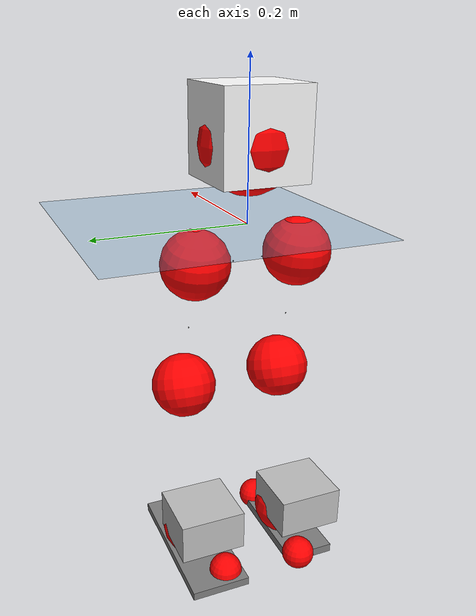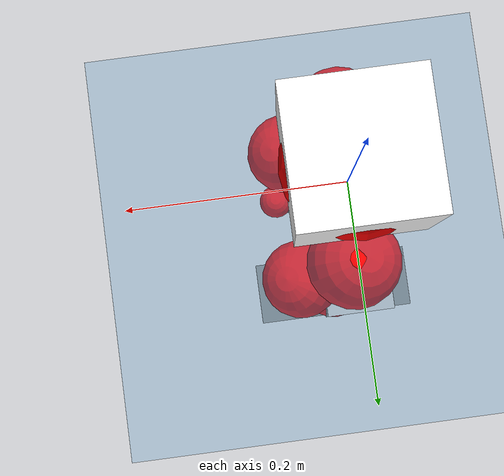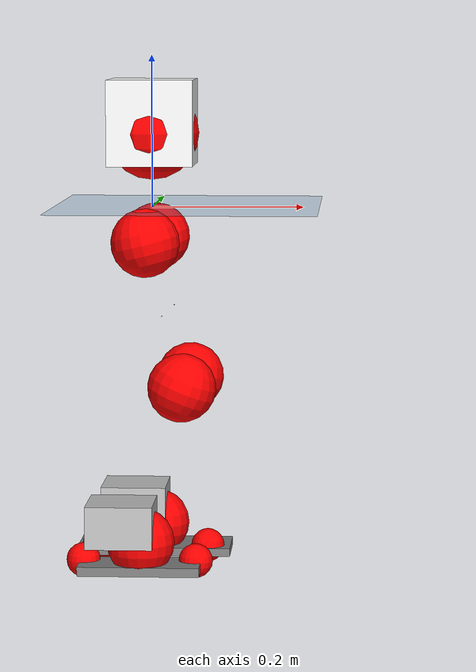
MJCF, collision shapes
<mujoco model="pi_12dof_release_v1">
  <compiler angle="radian" assetdir="assets" balanceinertia="true" inertiafromgeom="false"/>

  <option timestep="0.005" density="1.2" viscosity="2e-05"/>

  <size nkey="1"/>

  <visual>
    <quality shadowsize="8192"/>
    <map shadowclip="0.5"/>
  </visual>

  <default>
    <default class="/">
      <joint armature="0.01" damping="0.01" frictionloss="0.01"/>
      <geom contype="0" conaffinity="0" group="1" solref="-1000 -80"/>
      <site size="0.01 0.005 0.005" group="5"/>
      <general forcelimited="true" biastype="affine" gainprm="20" biasprm="0 -20 -0.5"/>
      <default class="foot">
        <geom size="0.0845 0.036 0.005" type="box" condim="6" group="4" priority="1" friction="0.9 0.2 0.2" solimp="0.015 1 0.005"/>
      </default>
      <default class="reward_collision_sphere">
        <geom group="5" rgba="1 0 0 1"/>
      </default>
    </default>
  </default>

  <asset>
    <texture type="skybox" colorspace="auto" name="//unnamed_texture_0" builtin="gradient" rgb1="0.95 0.95 0.95" rgb2="0.95 0.95 0.95" width="100" height="600"/>
    <texture type="2d" colorspace="auto" name="texplane" builtin="checker" rgb1="0.345 0.575 0.748" rgb2="0.345 0.575 0.748" markrgb="1 1 1" width="512" height="512"/>
    <material name="MatPlane" class="/" texture="texplane" texuniform="true" texrepeat="2 2" specular="0.9"/>
    <mesh name="baselink_1" class="/" file="baselink_1.STL"/>
    <mesh name="r_hip_pitch_link" class="/" file="r_hip_pitch_link.STL"/>
    <mesh name="r_hip_roll_link" class="/" file="r_hip_roll_link.STL"/>
    <mesh name="r_thigh_link" class="/" file="r_thigh_link.STL"/>
    <mesh name="r_calf_link" class="/" file="r_calf_link.STL"/>
    <mesh name="r_ankle_pitch_link" class="/" file="r_ankle_pitch_link.STL"/>
    <mesh name="r_ankle_roll_link" class="/" file="r_ankle_roll_link.STL"/>
    <mesh name="l_hip_pitch_link" class="/" file="l_hip_pitch_link.STL"/>
    <mesh name="l_hip_roll_link" class="/" file="l_hip_roll_link.STL"/>
    <mesh name="l_thigh_link" class="/" file="l_thigh_link.STL"/>
    <mesh name="l_calf_link" class="/" file="l_calf_link.STL"/>
    <mesh name="l_ankle_pitch_link" class="/" file="l_ankle_pitch_link.STL"/>
    <mesh name="l_ankle_roll_link" class="/" file="l_ankle_roll_link.STL"/>
  </asset>

  <worldbody>
    <geom name="floor" class="/" size="100 100 0.125" type="plane" group="0" material="MatPlane"/>
    <light name="toplight_shadow" class="/" pos="0 0 5" dir="0.0990148 0.0990148 -0.990148" type="directional" ambient="0.04 0.04 0.04" diffuse="0.55 0.55 0.55" specular="0.12 0.12 0.12"/>
    <light name="toplight_fill" class="/" pos="0 0 5" dir="0.0990148 0.0990148 -0.990148" type="directional" castshadow="false" ambient="0.04 0.04 0.04" diffuse="0.3 0.3 0.3" specular="0.08 0.08 0.08"/>
    <body name="trunk" pos="0.000331895 -0.000239554 -4.66916e-05" quat="1 -6.4602e-05 7.98924e-06 -8.92534e-05">
      <inertial pos="0.00347389 -0.0029584 0.0556901" quat="0.69611 0.00918685 0.00930568 0.717817" mass="3.08399" diaginertia="0.0153047 0.00430747 0.0220903"/>
      <joint name="//unnamed_joint_0" type="free"/>
      <geom name="//unnamed_geom_1" class="/" type="mesh" density="0" rgba="1 1 1 1" mesh="baselink_1"/>
      <geom name="//unnamed_geom_2" class="/" size="0.056199 0.056199 0.056199" pos="0 0 0.112241" type="box" rgba="1 1 1 1"/>
      <geom name="//unnamed_geom_3" class="reward_collision_sphere" size="0.0618189" pos="0 0 0.0982105"/>
      <site name="imu" class="/" pos="0.0124703 -0.00708272 0.0119948" size="0.0112398"/>
      <camera name="track" class="/" pos="0 -1.72948 0" quat="0.707107 0.707107 0 0" mode="trackcom"/>
      <camera name="ego_camera" class="/" pos="0.0828141 0 0.252541" quat="-0.5 -0.5 0.5 0.5"/>
      <body name="r_hip_pitch_link" pos="-0.00254571 -0.0205453 -0.0435901" quat="0.992206 -0.000381029 -0.124597 0.00133784">
        <inertial pos="0.00262748 -0.0500244 -0.00204179" quat="-0.0222234 0.706273 -0.0192751 0.707328" mass="0.492044" diaginertia="0.000172256 4.49959e-05 0.00044387"/>
        <joint name="r_hip_pitch_joint" class="/" pos="0 0 0" axis="0.0119673 -0.999845 -0.0129093" range="-1.78605 1.24174" armature="0.0105138" damping="0.00769475" frictionloss="0.0114585"/>
        <geom name="//unnamed_geom_4" class="/" type="mesh" density="0" rgba="0.75294 0.75294 0.75294 1" mesh="r_hip_pitch_link"/>
        <geom name="//unnamed_geom_5" class="/" size="0.00056199 0.00056199 0.00056199" type="box" rgba="0.75294 0.75294 0.75294 1"/>
        <body name="r_hip_roll_link" pos="-0.00104999 -0.0493658 0.00208885" quat="1 1.07784e-05 1.04318e-05 2.11776e-06">
          <inertial pos="-0.00171481 -0.000155879 -0.0866509" quat="0.705696 -0.078992 -0.0824958 0.699248" mass="0.584156" diaginertia="0.000542785 0.000136785 0.000749957"/>
          <joint name="r_hip_roll_joint" class="/" pos="0 0 0" axis="-0.999993 -0.00271088 0.00250822" range="-0.126651 0.474894" armature="0.0100654" damping="0.0414475" frictionloss="0.0119582"/>
          <geom name="//unnamed_geom_6" class="/" type="mesh" density="0" rgba="0.75294 0.75294 0.75294 1" mesh="r_hip_roll_link"/>
          <geom name="//unnamed_geom_7" class="/" size="0.00056199 0.00056199 0.00056199" type="box" rgba="0.75294 0.75294 0.75294 1"/>
          <geom name="//unnamed_geom_8" class="reward_collision_sphere" size="0.0449592"/>
          <body name="r_thigh_link" pos="-0.00244745 0.000374125 -0.097796" quat="0.999999 0.000863432 -0.000856675 -0.000286235">
            <inertial pos="0.00081996 0.000874326 -0.0657926" quat="0.736342 0.676609 -0.000454228 -0.00100307" mass="0.155743" diaginertia="0.000204562 4.70562e-05 0.000318829"/>
            <joint name="r_thigh_joint" class="/" pos="0 0 0" axis="0.00234546 -0.000359859 -0.999997" range="-0.302307 0.596551" armature="0.0105711" damping="0.00859227" frictionloss="0.010827"/>
            <geom name="//unnamed_geom_9" class="/" type="mesh" density="0" rgba="0.75294 0.75294 0.75294 1" mesh="r_thigh_link"/>
            <geom name="//unnamed_geom_10" class="/" size="0.00056199 0.00056199 0.00056199" type="box" rgba="0.75294 0.75294 0.75294 1"/>
            <body name="r_calf_link" pos="0.00194954 -0.00360435 -0.0969332" quat="0.947587 -0.000502638 0.319498 5.52579e-05">
              <inertial pos="-0.000127235 0.00164814 -0.100275" quat="0.999971 -0.000965291 -0.00275777 0.00701658" mass="1.22513" diaginertia="0.0058837 0.00169968 0.000946889"/>
              <joint name="r_calf_joint" class="/" pos="0 0 0" axis="0.0139353 -0.999824 0.0125341" range="-1.69306 0.644837" armature="0.0114163" damping="0.0124847" frictionloss="0.00978672"/>
              <geom name="//unnamed_geom_11" class="/" type="mesh" density="0" rgba="0.75294 0.75294 0.75294 1" mesh="r_calf_link"/>
              <geom name="//unnamed_geom_12" class="/" size="0.00056199 0.00056199 0.00056199" type="box" rgba="0.75294 0.75294 0.75294 1"/>
              <geom name="//unnamed_geom_13" class="reward_collision_sphere" size="0.0449592"/>
              <body name="r_ankle_pitch_link" pos="-0.00396859 0.00130838 -0.196395" quat="0.979995 -0.00113498 -0.199019 -0.000178852">
                <inertial pos="0.00454947 0.00119308 -0.000112612" quat="0.0040233 0.707469 -0.00571958 0.70671" mass="0.231695" diaginertia="0.000494725 9.90007e-05 0.000635769"/>
                <joint name="r_ankle_pitch_joint" class="/" pos="0 0 0" axis="-0.00382052 -0.999959 0.00824187" range="-1.31024 0.542185" armature="0.0110725" damping="0" frictionloss="0.0104093"/>
                <geom name="//unnamed_geom_14" class="/" type="mesh" density="0" rgba="0.75294 0.75294 0.75294 1" mesh="r_ankle_pitch_link"/>
                <geom name="//unnamed_geom_15" class="/" size="0.0438352 0.0449592 0.0280995" type="box" rgba="0.75294 0.75294 0.75294 1"/>
                <body name="r_ankle_roll_link" pos="0.0799934 0.00544263 0.00113102" quat="0.999999 -0.000184305 -0.000364582 -0.000954926">
                  <inertial pos="-0.0284709 -0.0023895 -0.0239426" quat="0.552518 0.425954 0.44262 0.56336" mass="0.771987" diaginertia="0.00186597 0.000496403 0.00153374"/>
                  <joint name="r_ankle_roll_joint" class="/" pos="0 0 0" axis="-0.999999 0.00100163 0.000651884" stiffness="0.00879044" range="-0.117597 0.108802" armature="0.0111211" damping="0.0079221" frictionloss="0.00897458"/>
                  <geom name="//unnamed_geom_16" class="/" type="mesh" density="0" rgba="0.75294 0.75294 0.75294 1" mesh="r_ankle_roll_link"/>
                  <geom name="//unnamed_geom_17" class="/" type="mesh" rgba="0.75294 0.75294 0.75294 1" mesh="r_ankle_roll_link"/>
                  <geom name="right_foot" class="foot" size="0.0800213 0.0338902 0.00603452" pos="-0.0563136 0 -0.0617323"/>
                  <geom name="//unnamed_geom_19" class="reward_collision_sphere" size="0.0449592" pos="-0.0552094 0 -0.0280602"/>
                  <geom name="//unnamed_geom_20" class="reward_collision_sphere" size="0.0224796" pos="0.0165628 0.0172948 -0.0561203"/>
                  <geom name="//unnamed_geom_21" class="reward_collision_sphere" size="0.0224796" pos="-0.132503 0.0172948 -0.0561203"/>
                  <site name="right_foot" class="foot" pos="-0.0563136 0 -0.0617323" size="0.0112398"/>
                </body>
              </body>
            </body>
          </body>
        </body>
      </body>
      <body name="l_hip_pitch_link" pos="-0.00199317 0.0194431 -0.0451486" quat="0.99213 5.73593e-05 -0.125206 0.00085445">
        <inertial pos="-0.000884386 0.0484042 0.00218914" quat="-0.0366834 0.699473 0.0525543 0.711779" mass="0.583776" diaginertia="0.000216799 5.10815e-05 0.000532157"/>
        <joint name="l_hip_pitch_joint" class="/" pos="0 0 0" axis="-0.00253116 0.999987 -0.00441191" stiffness="0.00025263" range="-1.26496 1.80045" armature="0.0118326" damping="0.017388" frictionloss="0.0119751"/>
        <geom name="//unnamed_geom_22" class="/" type="mesh" density="0" rgba="0.75294 0.75294 0.75294 1" mesh="l_hip_pitch_link"/>
        <geom name="//unnamed_geom_23" class="/" size="0.00056199 0.00056199 0.00056199" type="box" rgba="0.75294 0.75294 0.75294 1"/>
        <body name="l_hip_roll_link" pos="0.00170189 0.0506742 0.000187082" quat="1 0.000647229 0.000711412 7.06495e-05">
          <inertial pos="-0.0042189 -0.000223317 -0.0842504" quat="0.695333 -0.0776366 -0.0682479 0.711215" mass="0.539372" diaginertia="0.000513402 0.00012738 0.00068983"/>
          <joint name="l_hip_roll_joint" class="/" pos="0 0 0" axis="-0.999951 -0.00666561 -0.00735825" range="-0.586283 0.174358" armature="0.0125378" damping="0.00951266" frictionloss="0.0119514"/>
          <geom name="//unnamed_geom_24" class="/" type="mesh" density="0" rgba="0.75294 0.75294 0.75294 1" mesh="l_hip_roll_link"/>
          <geom name="//unnamed_geom_25" class="/" size="0.00056199 0.00056199 0.00056199" type="box" rgba="0.75294 0.75294 0.75294 1"/>
          <geom name="//unnamed_geom_26" class="reward_collision_sphere" size="0.0449592"/>
          <body name="l_thigh_link" pos="-0.000130051 0.00153928 -0.0966193" quat="1 0.000366522 -0.00042953 0.000112147">
            <inertial pos="-0.000710654 -0.00405226 -0.0667399" quat="0.675343 0.737504 -0.000127766 0.000282643" mass="0.154033" diaginertia="0.000186439 4.1676e-05 0.00027784"/>
            <joint name="l_thigh_joint" class="/" pos="0 0 0" axis="0.000643922 -0.0121472 -0.999926" range="-0.549647 0.329093" armature="0.0100837" damping="0.00150053" frictionloss="0.0112267"/>
            <geom name="//unnamed_geom_27" class="/" type="mesh" density="0" rgba="0.75294 0.75294 0.75294 1" mesh="l_thigh_link"/>
            <geom name="//unnamed_geom_28" class="/" size="0.00056199 0.00056199 0.00056199" type="box" rgba="0.75294 0.75294 0.75294 1"/>
            <body name="l_calf_link" pos="-0.00219316 -0.000140845 -0.0992337" quat="0.947889 -0.000272297 0.318601 -4.99617e-05">
              <inertial pos="0.00262488 0.00470235 -0.0998446" quat="0.999792 -0.00736517 -0.0185969 0.00393486" mass="1.10999" diaginertia="0.00579917 0.00164252 0.000938604"/>
              <joint name="l_calf_joint" class="/" pos="0 0 0" axis="0.0058216 0.999979 -0.00284463" stiffness="0.00735953" range="-0.600042 1.61522" armature="0.0116051" damping="0.0206742" frictionloss="0.0108371"/>
              <geom name="//unnamed_geom_29" class="/" type="mesh" density="0" rgba="0.75294 0.75294 0.75294 1" mesh="l_calf_link"/>
              <geom name="//unnamed_geom_30" class="/" size="0.00056199 0.00056199 0.00056199" type="box" rgba="0.75294 0.75294 0.75294 1"/>
              <geom name="//unnamed_geom_31" class="reward_collision_sphere" size="0.0449592"/>
              <body name="l_ankle_pitch_link" pos="-0.0013765 0.00311595 -0.192502" quat="0.980178 0.000297755 -0.198116 -0.000696033">
                <inertial pos="0.00519742 -0.00527454 0.00137733" quat="-0.0029029 0.704493 0.00238084 0.709701" mass="0.265254" diaginertia="0.000530258 0.000113955 0.000677412"/>
                <joint name="l_ankle_pitch_joint" class="/" pos="0 0 0" axis="-0.00853548 0.999902 -0.0110635" range="-0.48576 1.28529" armature="0.0108963" damping="0.0191068" frictionloss="0.00982949"/>
                <geom name="//unnamed_geom_32" class="/" type="mesh" density="0" rgba="0.75294 0.75294 0.75294 1" mesh="l_ankle_pitch_link"/>
                <geom name="//unnamed_geom_33" class="/" size="0.0438352 0.0449592 0.0280995" type="box" rgba="0.75294 0.75294 0.75294 1"/>
                <body name="l_ankle_roll_link" pos="0.0835262 0.00172972 0.00108239" quat="1 9.55121e-05 8.12916e-05 -6.70505e-05">
                  <inertial pos="-0.0244714 -0.000429636 -0.0198451" quat="0.55126 0.422229 0.442262 0.567661" mass="0.741843" diaginertia="0.00186984 0.000472239 0.001421"/>
                  <joint name="l_ankle_roll_joint" class="/" pos="0 0 0" axis="-0.999749 0.0200492 -0.0100363" range="-0.141306 0.247748" armature="0.0111084" damping="0.0199082" frictionloss="0.013665"/>
                  <geom name="//unnamed_geom_34" class="/" type="mesh" density="0" rgba="0.75294 0.75294 0.75294 1" mesh="l_ankle_roll_link"/>
                  <geom name="//unnamed_geom_35" class="/" type="mesh" rgba="0.75294 0.75294 0.75294 1" mesh="l_ankle_roll_link"/>
                  <geom name="left_foot" class="foot" size="0.103649 0.0403423 0.00555013" pos="-0.0563136 0 -0.0617323"/>
                  <geom name="//unnamed_geom_37" class="reward_collision_sphere" size="0.0449592" pos="-0.0552094 0 -0.0280602"/>
                  <geom name="//unnamed_geom_38" class="reward_collision_sphere" size="0.0224796" pos="0.0165628 -0.0172948 -0.0561203"/>
                  <geom name="//unnamed_geom_39" class="reward_collision_sphere" size="0.0224796" pos="-0.132503 -0.0172948 -0.0561203"/>
                  <site name="left_foot" class="foot" pos="-0.0563136 0 -0.0617323" size="0.0112398"/>
                </body>
              </body>
            </body>
          </body>
        </body>
      </body>
    </body>
  </worldbody>

  <contact>
    <pair class="/" geom1="floor" geom2="right_foot" name="//unnamed_contact_1"/>
    <pair class="/" geom1="floor" geom2="left_foot" name="//unnamed_contact_0"/>
  </contact>

  <actuator>
    <general name="r_hip_pitch_joint" class="/" joint="r_hip_pitch_joint" forcerange="-23.6236 23.6236" gainprm="21.2463" biasprm="0 -21.2463 -0.600651"/>
    <general name="r_hip_roll_joint" class="/" joint="r_hip_roll_joint" forcerange="-23.7505 23.7505" gainprm="21.2463" biasprm="0 -21.2463 -0.600651"/>
    <general name="r_thigh_joint" class="/" joint="r_thigh_joint" forcerange="-22.8241 22.8241" gainprm="21.2463" biasprm="0 -21.2463 -0.600651"/>
    <general name="r_calf_joint" class="/" joint="r_calf_joint" forcerange="-25.8164 25.8164" gainprm="21.2463" biasprm="0 -21.2463 -0.600651"/>
    <general name="r_ankle_pitch_joint" class="/" joint="r_ankle_pitch_joint" forcerange="-24.2251 24.2251" gainprm="21.2463" biasprm="0 -21.2463 -0.600651"/>
    <general name="r_ankle_roll_joint" class="/" joint="r_ankle_roll_joint" forcerange="-21.5199 21.5199" gainprm="21.2463" biasprm="0 -21.2463 -0.600651"/>
    <general name="l_hip_pitch_joint" class="/" joint="l_hip_pitch_joint" forcerange="-22.3924 22.3924" gainprm="21.2463" biasprm="0 -21.2463 -0.600651"/>
    <general name="l_hip_roll_joint" class="/" joint="l_hip_roll_joint" forcerange="-27.3255 27.3255" gainprm="21.2463" biasprm="0 -21.2463 -0.600651"/>
    <general name="l_thigh_joint" class="/" joint="l_thigh_joint" forcerange="-25.8716 25.8716" gainprm="21.2463" biasprm="0 -21.2463 -0.600651"/>
    <general name="l_calf_joint" class="/" joint="l_calf_joint" forcerange="-21.3202 21.3202" gainprm="21.2463" biasprm="0 -21.2463 -0.600651"/>
    <general name="l_ankle_pitch_joint" class="/" joint="l_ankle_pitch_joint" forcerange="-25.7879 25.7879" gainprm="21.2463" biasprm="0 -21.2463 -0.600651"/>
    <general name="l_ankle_roll_joint" class="/" joint="l_ankle_roll_joint" forcerange="-21.8941 21.8941" gainprm="21.2463" biasprm="0 -21.2463 -0.600651"/>
  </actuator>

  <sensor>
    <gyro site="imu" name="imu_angular_velocity"/>
    <velocimeter site="imu" name="imu_linear_velocity"/>
    <framelinvel objtype="site" objname="left_foot" name="left_foot_global_linear_velocity"/>
    <framelinvel objtype="site" objname="right_foot" name="right_foot_global_linear_velocity"/>
  </sensor>

  <keyframe>
    <key name="home" qpos="0 0 0.291 1 0 0 0 0.4 0 0 -0.8 0.4 0 -0.4 0 0 0.8 -0.4 0"/>
  </keyframe>
</mujoco>
